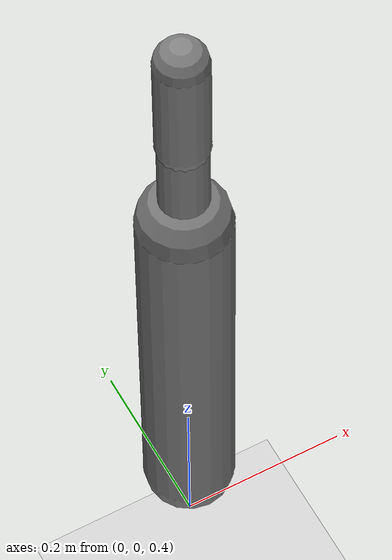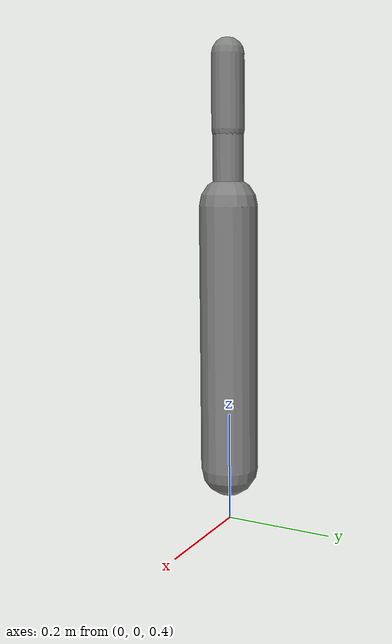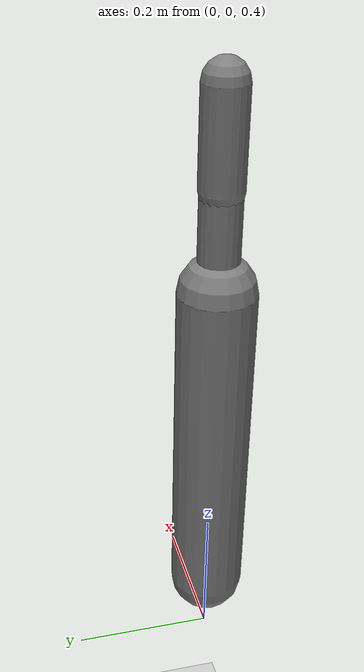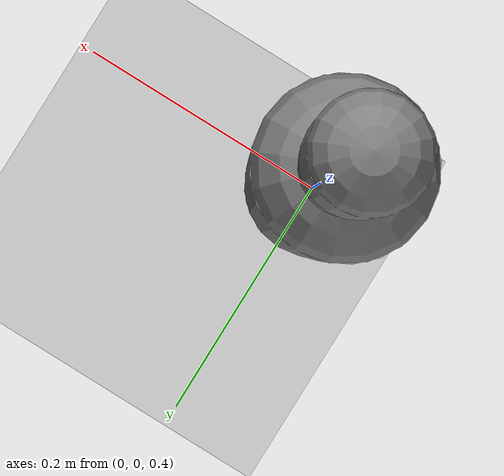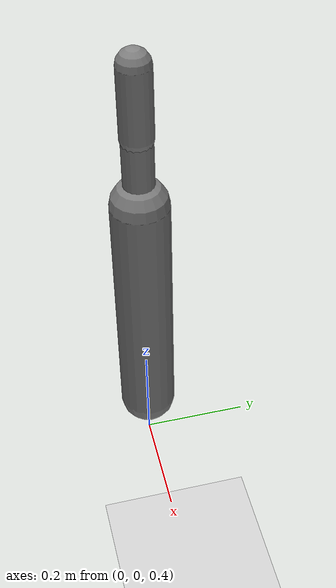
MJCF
<?xml version='1.0' encoding='UTF-8'?>
<mujoco model="RobotModel">
  <option gravity="0 0 -9.81" timestep="0.002" solver="CG" iterations="500" integrator="Euler"/>
  <worldbody>
    <geom name="Floor" type="plane" size="10 10 0.1" pos="0 0 0" rgba="0.8 0.8 0.8 1"/>
    <body name="Limb0" pos="0 0 0.5">
      <geom type="capsule" fromto="0 0 0 0 0 0.48832703778561576" size="0.053396056476004" density="1000" contype="0" conaffinity="0"/>
      <body name="Limb0_155df9bd" pos="0 0 0.5">
        <geom type="capsule" fromto="0 0 0 0 0 0.12496720774684561" size="0.02797809878527991" density="800" contype="0" conaffinity="0"/>
        <body name="Limb1_155df9bd" pos="0 0 0.12496720774684561">
          <geom type="capsule" fromto="0 0 0 0 0 0.13119347076907062" size="0.02981099064989181" density="800" contype="0" conaffinity="0"/>
          <joint name="Joint_Limb0_155df9bd_Limb1_155df9bd_0" type="hinge" axis="0 1 0" range="-45 45"/>
        </body>
        <joint name="Joint_Limb0_Limb0_155df9bd_0" type="hinge" axis="1 0 0" range="-60 60"/>
      </body>
    </body>
  </worldbody>
  <actuator>
    <position name="position_Actuator_Joint_Limb0_Limb0_155df9bd_0" joint="Joint_Limb0_Limb0_155df9bd_0" gear="1.0"/>
    <position name="position_Actuator_Joint_Limb0_155df9bd_Limb1_155df9bd_0" joint="Joint_Limb0_155df9bd_Limb1_155df9bd_0" gear="1.0"/>
  </actuator>
</mujoco>
